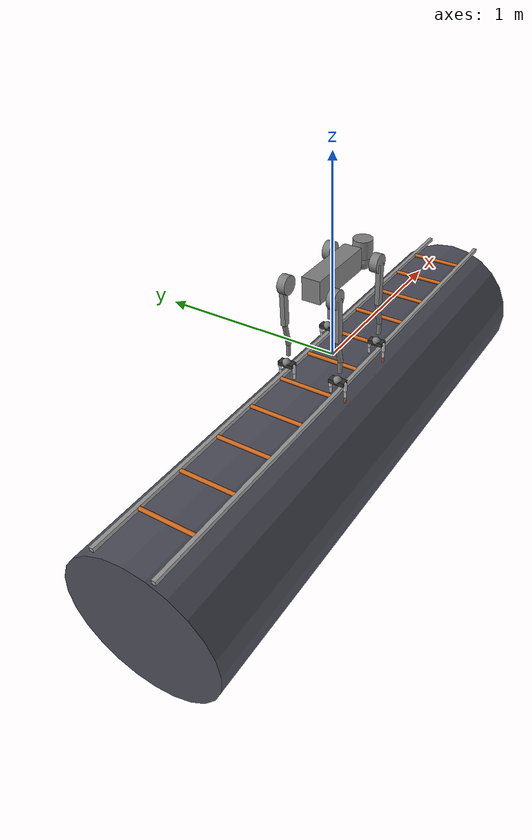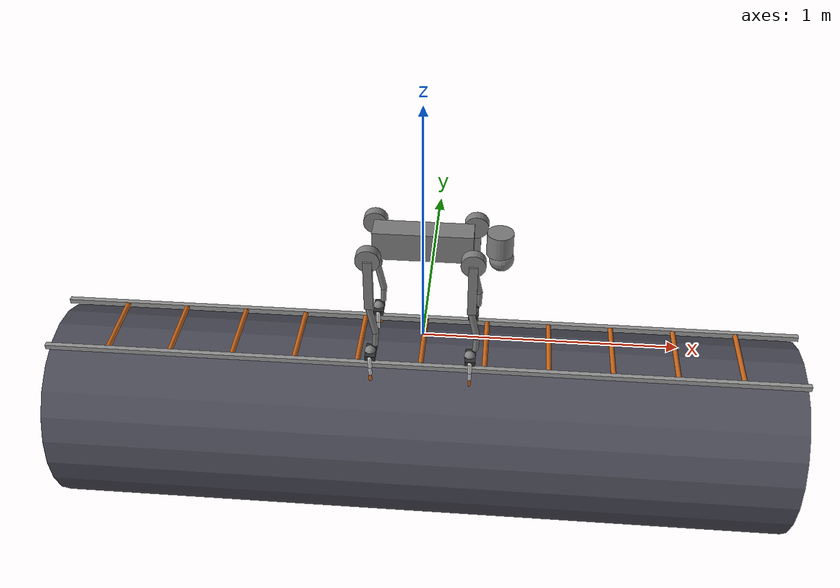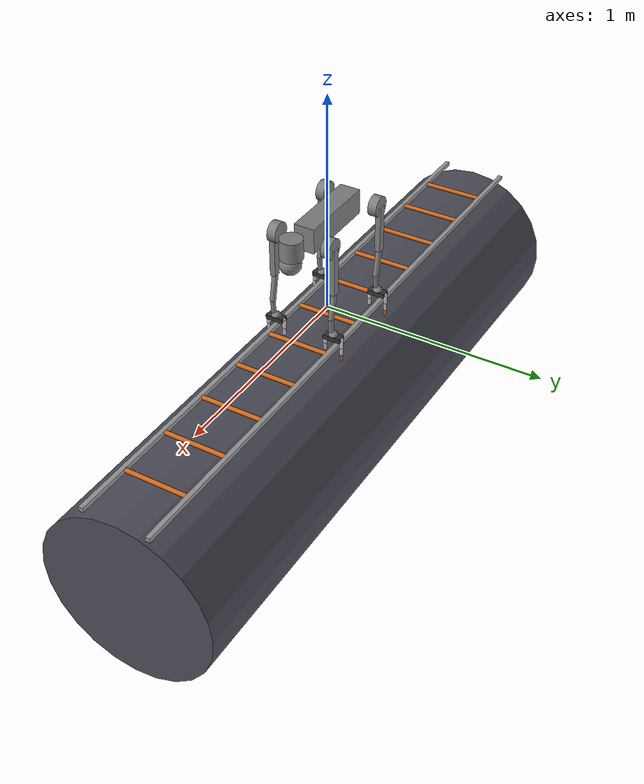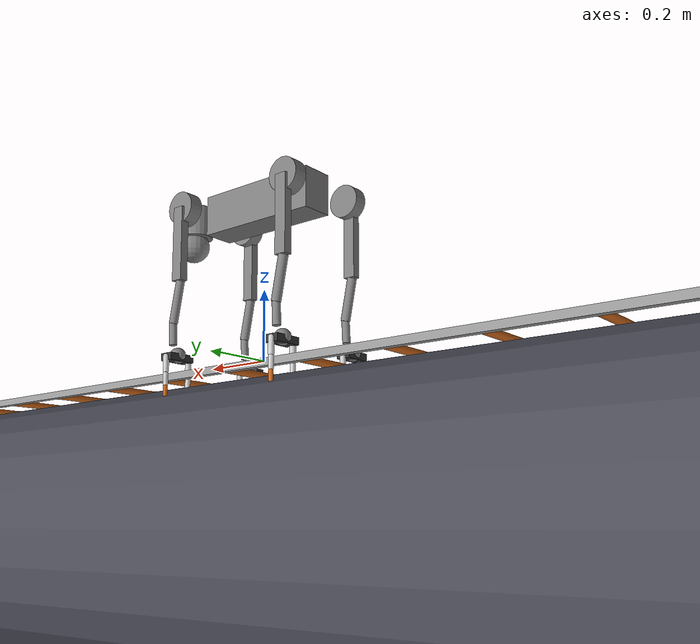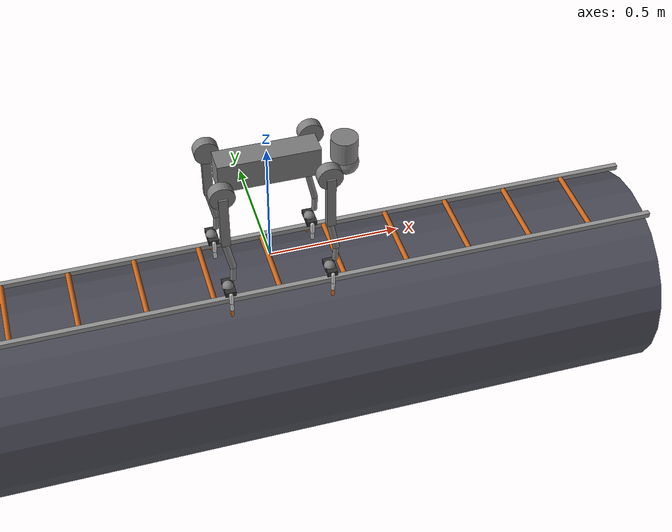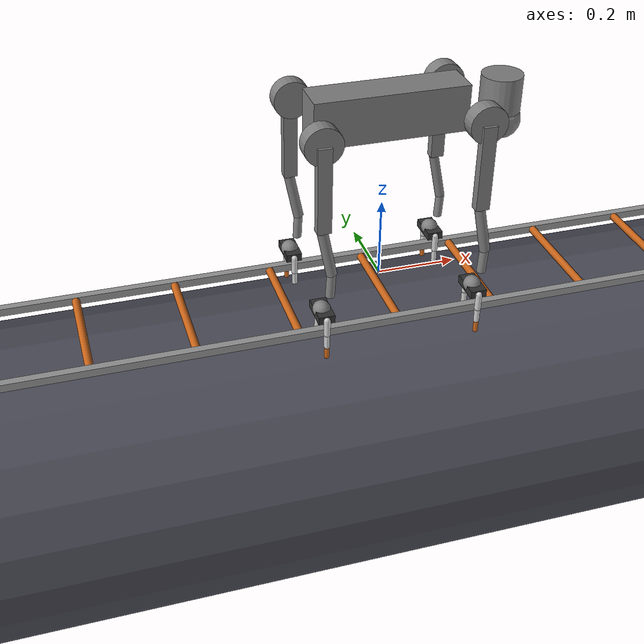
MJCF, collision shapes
<mujoco model="go2 scene">
  <include file="go2.xml"/>

  <statistic center="0 0 0.1" extent="0.8"/>

  <visual>
    <headlight diffuse="0.6 0.6 0.6" ambient="0.3 0.3 0.3" specular="0 0 0"/>
    <rgba haze="0.15 0.25 0.35 1"/>
    <global azimuth="-130" elevation="-20"/>
  </visual>

  <asset>
    <texture type="skybox" builtin="gradient" rgb1="0.3 0.5 0.7" rgb2="0 0 0" width="512" height="3072"/>
    <texture type="2d" name="groundplane" builtin="checker" mark="edge" rgb1="0.2 0.3 0.4" rgb2="0.1 0.2 0.3"
      markrgb="0.8 0.8 0.8" width="300" height="300"/>
    <material name="groundplane" texture="groundplane" texuniform="true" texrepeat="5 5" reflectance="0.2"/>
  </asset>

  <worldbody>
    <light pos="0 0 3" dir="0 0 -1" directional="true"/>

    <geom name="space_station_module" type="cylinder" size="0.4 1.5" pos="0 0 -0.45" zaxis="1 0 0" rgba="0.3 0.3 0.35 1"/>

    <body name="ladder_structure">
        <geom name="ladder_rail_front" type="box" size="1.5 0.01 0.01" pos="0  0.15 -0.04" rgba="0.6 0.6 0.6 1"/>
        <geom name="ladder_rail_back"  type="box" size="1.5 0.01 0.01" pos="0 -0.15 -0.04" rgba="0.6 0.6 0.6 1"/>

        <geom name="rung_1"  type="cylinder" size="0.01 0.15" pos="-1.25 0 -0.04" zaxis="0 1 0" rgba="0.8 0.4 0.1 1"/>
        <geom name="rung_2"  type="cylinder" size="0.01 0.15" pos="-1.0  0 -0.04" zaxis="0 1 0" rgba="0.8 0.4 0.1 1"/>
        <geom name="rung_3"  type="cylinder" size="0.01 0.15" pos="-0.75 0 -0.04" zaxis="0 1 0" rgba="0.8 0.4 0.1 1"/>
        <geom name="rung_4"  type="cylinder" size="0.01 0.15" pos="-0.5  0 -0.04" zaxis="0 1 0" rgba="0.8 0.4 0.1 1"/>
        <geom name="rung_5"  type="cylinder" size="0.01 0.15" pos="-0.25 0 -0.04" zaxis="0 1 0" rgba="0.8 0.4 0.1 1"/>
        <geom name="rung_6"  type="cylinder" size="0.01 0.15" pos=" 0.0  0 -0.04" zaxis="0 1 0" rgba="0.8 0.4 0.1 1"/>
        <geom name="rung_7"  type="cylinder" size="0.01 0.15" pos=" 0.25 0 -0.04" zaxis="0 1 0" rgba="0.8 0.4 0.1 1"/>
        <geom name="rung_8"  type="cylinder" size="0.01 0.15" pos=" 0.5  0 -0.04" zaxis="0 1 0" rgba="0.8 0.4 0.1 1"/>
        <geom name="rung_9"  type="cylinder" size="0.01 0.15" pos=" 0.75 0 -0.04" zaxis="0 1 0" rgba="0.8 0.4 0.1 1"/>
        <geom name="rung_10" type="cylinder" size="0.01 0.15" pos=" 1.0  0 -0.04" zaxis="0 1 0" rgba="0.8 0.4 0.1 1"/>
        <geom name="rung_11" type="cylinder" size="0.01 0.15" pos=" 1.25 0 -0.04" zaxis="0 1 0" rgba="0.8 0.4 0.1 1"/>
    </body>
  </worldbody>
</mujoco>

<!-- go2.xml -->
<mujoco model="go2">
  <compiler angle="radian" meshdir="assets" autolimits="true"/>

  <option cone="elliptic" impratio="100"/>

  <default>
    <default class="go2">
      <geom friction="0.6" margin="0.001" condim="1"/>
      <joint axis="0 1 0" damping="2" armature="0.01" frictionloss="0.2"/>
      <motor ctrlrange="-23.7 23.7"/>
      <default class="abduction">
        <joint axis="1 0 0" range="-1.0472 1.0472"/>
      </default>
      <default class="hip">
        <default class="front_hip">
          <joint range="-1.5708 3.4907"/>
        </default>
        <default class="back_hip">
          <joint range="-0.5236 4.5379"/>
        </default>
      </default>
      <default class="knee">
        <joint range="-2.7227 -0.83776"/>
        <motor ctrlrange="-45.43 45.43"/>
      </default>
      <default class="visual">
        <geom type="mesh" contype="0" conaffinity="0" group="2"/>
      </default>
      <default class="collision">
        <geom group="3"/>
        <default class="foot">
          <geom size="0.022" pos="-0.002 0 -0.213" priority="1" solimp="0.015 1 0.022" condim="6"
            friction="0.8 0.02 0.01"/>
        </default>
      </default>
    </default>
  </default>

  <asset>
    <material name="metal" rgba=".9 .95 .95 1"/>
    <material name="black" rgba="0 0 0 1"/>
    <material name="white" rgba="1 1 1 1"/>
    <material name="gray" rgba="0.671705 0.692426 0.774270 1"/>

    <mesh file="base_0.obj"/>
    <mesh file="base_1.obj"/>
    <mesh file="base_2.obj"/>
    <mesh file="base_3.obj"/>
    <mesh file="base_4.obj"/>
    <mesh file="hip_0.obj"/>
    <mesh file="hip_1.obj"/>
    <mesh file="thigh_0.obj"/>
    <mesh file="thigh_1.obj"/>
    <mesh file="thigh_mirror_0.obj"/>
    <mesh file="thigh_mirror_1.obj"/>
    <mesh file="calf_0.obj"/>
    <mesh file="calf_1.obj"/>
    <mesh file="calf_mirror_0.obj"/>
    <mesh file="calf_mirror_1.obj"/>
    <mesh file="foot.obj"/>
  </asset>

  <worldbody>
    <body name="base" pos="0 0 0.445" childclass="go2">
      <inertial pos="0.021112 0 -0.005366" quat="-0.000543471 0.713435 -0.00173769 0.700719" mass="6.921"
        diaginertia="0.107027 0.0980771 0.0244531"/>
      <freejoint/>
      <geom mesh="base_0" material="black" class="visual"/>
      <geom mesh="base_1" material="black" class="visual"/>
      <geom mesh="base_2" material="black" class="visual"/>
      <geom mesh="base_3" material="white" class="visual"/>
      <geom mesh="base_4" material="gray" class="visual"/>
      <geom size="0.1881 0.04675 0.057" type="box" class="collision"/>
      <geom size="0.05 0.045" pos="0.285 0 0.01" type="cylinder" class="collision"/>
      <geom size="0.047" pos="0.293 0 -0.06" class="collision"/>
      <site name="imu" pos="-0.02557 0 0.04232"/>
      <body name="FL_hip" pos="0.1934 0.0465 0">
        <inertial pos="-0.0054 0.00194 -0.000105" quat="0.497014 0.499245 0.505462 0.498237" mass="0.678"
          diaginertia="0.00088403 0.000596003 0.000479967"/>
        <joint name="FL_hip_joint" class="abduction"/>
        <geom mesh="hip_0" material="metal" class="visual"/>
        <geom mesh="hip_1" material="gray" class="visual"/>
        <geom size="0.046 0.02" pos="0 0.08 0" quat="1 1 0 0" type="cylinder" class="collision"/>
        <body name="FL_thigh" pos="0 0.0955 0">
          <inertial pos="-0.00374 -0.0223 -0.0327" quat="0.829533 0.0847635 -0.0200632 0.551623" mass="1.152"
            diaginertia="0.00594973 0.00584149 0.000878787"/>
          <joint name="FL_thigh_joint" class="front_hip"/>
          <geom mesh="thigh_0" material="metal" class="visual"/>
          <geom mesh="thigh_1" material="gray" class="visual"/>
          <geom size="0.1065 0.01225 0.017" pos="0 0 -0.1065" quat="0.707107 0 0.707107 0" type="box"
            class="collision"/>
          <body name="FL_calf" pos="0 0 -0.213">
            <inertial pos="0.00629595 -0.000622121 -0.141417" quat="0.710672 0.00154099 -0.00450087 0.703508"
              mass="0.241352" diaginertia="0.0014901 0.00146356 5.31397e-05"/>
            <joint name="FL_calf_joint" class="knee"/>
            <geom mesh="calf_0" material="gray" class="visual"/>
            <geom mesh="calf_1" material="black" class="visual"/>
            <geom size="0.012 0.06" pos="0.008 0 -0.06" quat="0.994493 0 -0.104807 0" type="cylinder"
              class="collision"/>
            <geom size="0.011 0.0325" pos="0.02 0 -0.148" quat="0.999688 0 0.0249974 0" type="cylinder"
              class="collision"/>
            <geom pos="0 0 -0.213" mesh="foot" class="visual" material="black"/>
            <geom name="FL" class="foot"/>

            <body name="FL_gripper_palm" pos="0 0 -0.22" quat="0.7071 0 0 0.7071">
              <geom name="fl_palm_v" type="box" size="0.04 0.02 0.01" rgba="0.2 0.2 0.2 1" class="visual"/>
              <body name="fl_finger_L1" pos="0.04 0 0">
                <joint name="fl_g_L1_j" type="hinge" axis="0 1 0" range="0 1.57" damping="0.1" frictionloss="0.01" armature="0.001"/>
                <geom type="capsule" size="0.008 0.02" pos="0 0 -0.02" quat="1 0 0 0" rgba="0.8 0.8 0.8 1"/>
                <body name="fl_finger_L2" pos="0 0 -0.04">
                  <joint name="fl_g_L2_j" type="hinge" axis="0 1 0" range="0 1.57" damping="0.1" frictionloss="0.01" armature="0.001"/>
                  <geom type="capsule" size="0.007 0.018" pos="0 0 -0.018" quat="1 0 0 0" rgba="0.8 0.8 0.8 1"/>
                  <body name="fl_finger_L3" pos="0 0 -0.036">
                    <joint name="fl_g_L3_j" type="hinge" axis="0 1 0" range="0 1.57" damping="0.1" frictionloss="0.01" armature="0.001"/>
                    <geom type="capsule" size="0.006 0.015" pos="0 0 -0.015" quat="1 0 0 0" rgba="0.8 0.4 0.1 1"/>
                  </body>
                </body>
              </body>
              <body name="fl_finger_R1" pos="-0.04 0 0">
                <joint name="fl_g_R1_j" type="hinge" axis="0 -1 0" range="0 1.57" damping="0.1" frictionloss="0.01" armature="0.001"/>
                <geom type="capsule" size="0.008 0.02" pos="0 0 -0.02" quat="1 0 0 0" rgba="0.8 0.8 0.8 1"/>
                <body name="fl_finger_R2" pos="0 0 -0.04">
                  <joint name="fl_g_R2_j" type="hinge" axis="0 -1 0" range="0 1.57" damping="0.1" frictionloss="0.01" armature="0.001"/>
                  <geom type="capsule" size="0.007 0.018" pos="0 0 -0.018" quat="1 0 0 0" rgba="0.8 0.8 0.8 1"/>
                  <body name="fl_finger_R3" pos="0 0 -0.036">
                    <joint name="fl_g_R3_j" type="hinge" axis="0 -1 0" range="0 1.57" damping="0.1" frictionloss="0.01" armature="0.001"/>
                    <geom type="capsule" size="0.006 0.015" pos="0 0 -0.015" quat="1 0 0 0" rgba="0.8 0.4 0.1 1"/>
                  </body>
                </body>
              </body>
            </body>

          </body>
        </body>
      </body>
      <body name="FR_hip" pos="0.1934 -0.0465 0">
        <inertial pos="-0.0054 -0.00194 -0.000105" quat="0.498237 0.505462 0.499245 0.497014" mass="0.678"
          diaginertia="0.00088403 0.000596003 0.000479967"/>
        <joint name="FR_hip_joint" class="abduction"/>
        <geom mesh="hip_0" material="metal" class="visual" quat="4.63268e-05 1 0 0"/>
        <geom mesh="hip_1" material="gray" class="visual" quat="4.63268e-05 1 0 0"/>
        <geom size="0.046 0.02" pos="0 -0.08 0" quat="0.707107 0.707107 0 0" type="cylinder" class="collision"/>
        <body name="FR_thigh" pos="0 -0.0955 0">
          <inertial pos="-0.00374 0.0223 -0.0327" quat="0.551623 -0.0200632 0.0847635 0.829533" mass="1.152"
            diaginertia="0.00594973 0.00584149 0.000878787"/>
          <joint name="FR_thigh_joint" class="front_hip"/>
          <geom mesh="thigh_mirror_0" material="metal" class="visual"/>
          <geom mesh="thigh_mirror_1" material="gray" class="visual"/>
          <geom size="0.1065 0.01225 0.017" pos="0 0 -0.1065" quat="0.707107 0 0.707107 0" type="box"
            class="collision"/>
          <body name="FR_calf" pos="0 0 -0.213">
            <inertial pos="0.00629595 0.000622121 -0.141417" quat="0.703508 -0.00450087 0.00154099 0.710672"
              mass="0.241352" diaginertia="0.0014901 0.00146356 5.31397e-05"/>
            <joint name="FR_calf_joint" class="knee"/>
            <geom mesh="calf_mirror_0" material="gray" class="visual"/>
            <geom mesh="calf_mirror_1" material="black" class="visual"/>
            <geom size="0.013 0.06" pos="0.01 0 -0.06" quat="0.995004 0 -0.0998334 0" type="cylinder"
              class="collision"/>
            <geom size="0.011 0.0325" pos="0.02 0 -0.148" quat="0.999688 0 0.0249974 0" type="cylinder"
              class="collision"/>
            <geom pos="0 0 -0.213" mesh="foot" class="visual" material="black"/>
            <geom name="FR" class="foot"/>

            <body name="FR_gripper_palm" pos="0 0 -0.22" quat="0.7071 0 0 0.7071">
              <geom name="fr_palm_v" type="box" size="0.04 0.02 0.01" rgba="0.2 0.2 0.2 1" class="visual"/>
              <body name="fr_finger_L1" pos="0.04 0 0">
                <joint name="fr_g_L1_j" type="hinge" axis="0 1 0" range="0 1.57" damping="0.1" frictionloss="0.01" armature="0.001"/>
                <geom type="capsule" size="0.008 0.02" pos="0 0 -0.02" quat="1 0 0 0" rgba="0.8 0.8 0.8 1"/>
                <body name="fr_finger_L2" pos="0 0 -0.04">
                  <joint name="fr_g_L2_j" type="hinge" axis="0 1 0" range="0 1.57" damping="0.1" frictionloss="0.01" armature="0.001"/>
                  <geom type="capsule" size="0.007 0.018" pos="0 0 -0.018" quat="1 0 0 0" rgba="0.8 0.8 0.8 1"/>
                  <body name="fr_finger_L3" pos="0 0 -0.036">
                    <joint name="fr_g_L3_j" type="hinge" axis="0 1 0" range="0 1.57" damping="0.1" frictionloss="0.01" armature="0.001"/>
                    <geom type="capsule" size="0.006 0.015" pos="0 0 -0.015" quat="1 0 0 0" rgba="0.8 0.4 0.1 1"/>
                  </body>
                </body>
              </body>
              <body name="fr_finger_R1" pos="-0.04 0 0">
                <joint name="fr_g_R1_j" type="hinge" axis="0 -1 0" range="0 1.57" damping="0.1" frictionloss="0.01" armature="0.001"/>
                <geom type="capsule" size="0.008 0.02" pos="0 0 -0.02" quat="1 0 0 0" rgba="0.8 0.8 0.8 1"/>
                <body name="fr_finger_R2" pos="0 0 -0.04">
                  <joint name="fr_g_R2_j" type="hinge" axis="0 -1 0" range="0 1.57" damping="0.1" frictionloss="0.01" armature="0.001"/>
                  <geom type="capsule" size="0.007 0.018" pos="0 0 -0.018" quat="1 0 0 0" rgba="0.8 0.8 0.8 1"/>
                  <body name="fr_finger_R3" pos="0 0 -0.036">
                    <joint name="fr_g_R3_j" type="hinge" axis="0 -1 0" range="0 1.57" damping="0.1" frictionloss="0.01" armature="0.001"/>
                    <geom type="capsule" size="0.006 0.015" pos="0 0 -0.015" quat="1 0 0 0" rgba="0.8 0.4 0.1 1"/>
                  </body>
                </body>
              </body>
            </body>

          </body>
        </body>
      </body>
      <body name="RL_hip" pos="-0.1934 0.0465 0">
        <inertial pos="0.0054 0.00194 -0.000105" quat="0.505462 0.498237 0.497014 0.499245" mass="0.678"
          diaginertia="0.00088403 0.000596003 0.000479967"/>
        <joint name="RL_hip_joint" class="abduction"/>
        <geom mesh="hip_0" material="metal" class="visual" quat="4.63268e-05 0 1 0"/>
        <geom mesh="hip_1" material="gray" class="visual" quat="4.63268e-05 0 1 0"/>
        <geom size="0.046 0.02" pos="0 0.08 0" quat="0.707107 0.707107 0 0" type="cylinder" class="collision"/>
        <body name="RL_thigh" pos="0 0.0955 0">
          <inertial pos="-0.00374 -0.0223 -0.0327" quat="0.829533 0.0847635 -0.0200632 0.551623" mass="1.152"
            diaginertia="0.00594973 0.00584149 0.000878787"/>
          <joint name="RL_thigh_joint" class="back_hip"/>
          <geom mesh="thigh_0" material="metal" class="visual"/>
          <geom mesh="thigh_1" material="gray" class="visual"/>
          <geom size="0.1065 0.01225 0.017" pos="0 0 -0.1065" quat="0.707107 0 0.707107 0" type="box"
            class="collision"/>
          <body name="RL_calf" pos="0 0 -0.213">
            <inertial pos="0.00629595 -0.000622121 -0.141417" quat="0.710672 0.00154099 -0.00450087 0.703508"
              mass="0.241352" diaginertia="0.0014901 0.00146356 5.31397e-05"/>
            <joint name="RL_calf_joint" class="knee"/>
            <geom mesh="calf_0" material="gray" class="visual"/>
            <geom mesh="calf_1" material="black" class="visual"/>
            <geom size="0.013 0.06" pos="0.01 0 -0.06" quat="0.995004 0 -0.0998334 0" type="cylinder"
              class="collision"/>
            <geom size="0.011 0.0325" pos="0.02 0 -0.148" quat="0.999688 0 0.0249974 0" type="cylinder"
              class="collision"/>
            <geom pos="0 0 -0.213" mesh="foot" class="visual" material="black"/>
            <geom name="RL" class="foot"/>

            <body name="RL_gripper_palm" pos="0 0 -0.22" quat="0.7071 0 0 0.7071">
              <geom name="rl_palm_v" type="box" size="0.04 0.02 0.01" rgba="0.2 0.2 0.2 1" class="visual"/>
              <body name="rl_finger_L1" pos="0.04 0 0">
                <joint name="rl_g_L1_j" type="hinge" axis="0 1 0" range="0 1.57" damping="0.1" frictionloss="0.01" armature="0.001"/>
                <geom type="capsule" size="0.008 0.02" pos="0 0 -0.02" quat="1 0 0 0" rgba="0.8 0.8 0.8 1"/>
                <body name="rl_finger_L2" pos="0 0 -0.04">
                  <joint name="rl_g_L2_j" type="hinge" axis="0 1 0" range="0 1.57" damping="0.1" frictionloss="0.01" armature="0.001"/>
                  <geom type="capsule" size="0.007 0.018" pos="0 0 -0.018" quat="1 0 0 0" rgba="0.8 0.8 0.8 1"/>
                  <body name="rl_finger_L3" pos="0 0 -0.036">
                    <joint name="rl_g_L3_j" type="hinge" axis="0 1 0" range="0 1.57" damping="0.1" frictionloss="0.01" armature="0.001"/>
                    <geom type="capsule" size="0.006 0.015" pos="0 0 -0.015" quat="1 0 0 0" rgba="0.8 0.4 0.1 1"/>
                  </body>
                </body>
              </body>
              <body name="rl_finger_R1" pos="-0.04 0 0">
                <joint name="rl_g_R1_j" type="hinge" axis="0 -1 0" range="0 1.57" damping="0.1" frictionloss="0.01" armature="0.001"/>
                <geom type="capsule" size="0.008 0.02" pos="0 0 -0.02" quat="1 0 0 0" rgba="0.8 0.8 0.8 1"/>
                <body name="rl_finger_R2" pos="0 0 -0.04">
                  <joint name="rl_g_R2_j" type="hinge" axis="0 -1 0" range="0 1.57" damping="0.1" frictionloss="0.01" armature="0.001"/>
                  <geom type="capsule" size="0.007 0.018" pos="0 0 -0.018" quat="1 0 0 0" rgba="0.8 0.8 0.8 1"/>
                  <body name="rl_finger_R3" pos="0 0 -0.036">
                    <joint name="rl_g_R3_j" type="hinge" axis="0 -1 0" range="0 1.57" damping="0.1" frictionloss="0.01" armature="0.001"/>
                    <geom type="capsule" size="0.006 0.015" pos="0 0 -0.015" quat="1 0 0 0" rgba="0.8 0.4 0.1 1"/>
                  </body>
                </body>
              </body>
            </body>

          </body>
        </body>
      </body>
      <body name="RR_hip" pos="-0.1934 -0.0465 0">
        <inertial pos="0.0054 -0.00194 -0.000105" quat="0.499245 0.497014 0.498237 0.505462" mass="0.678"
          diaginertia="0.00088403 0.000596003 0.000479967"/>
        <joint name="RR_hip_joint" class="abduction"/>
        <geom mesh="hip_0" material="metal" class="visual" quat="2.14617e-09 4.63268e-05 4.63268e-05 -1"/>
        <geom mesh="hip_1" material="gray" class="visual" quat="2.14617e-09 4.63268e-05 4.63268e-05 -1"/>
        <geom size="0.046 0.02" pos="0 -0.08 0" quat="0.707107 0.707107 0 0" type="cylinder" class="collision"/>
        <body name="RR_thigh" pos="0 -0.0955 0">
          <inertial pos="-0.00374 0.0223 -0.0327" quat="0.551623 -0.0200632 0.0847635 0.829533" mass="1.152"
            diaginertia="0.00594973 0.00584149 0.000878787"/>
          <joint name="RR_thigh_joint" class="back_hip"/>
          <geom mesh="thigh_mirror_0" material="metal" class="visual"/>
          <geom mesh="thigh_mirror_1" material="gray" class="visual"/>
          <geom size="0.1065 0.01225 0.017" pos="0 0 -0.1065" quat="0.707107 0 0.707107 0" type="box"
            class="collision"/>
          <body name="RR_calf" pos="0 0 -0.213">
            <inertial pos="0.00629595 0.000622121 -0.141417" quat="0.703508 -0.00450087 0.00154099 0.710672"
              mass="0.241352" diaginertia="0.0014901 0.00146356 5.31397e-05"/>
            <joint name="RR_calf_joint" class="knee"/>
            <geom mesh="calf_mirror_0" material="gray" class="visual"/>
            <geom mesh="calf_mirror_1" material="black" class="visual"/>
            <geom size="0.013 0.06" pos="0.01 0 -0.06" quat="0.995004 0 -0.0998334 0" type="cylinder"
              class="collision"/>
            <geom size="0.011 0.0325" pos="0.02 0 -0.148" quat="0.999688 0 0.0249974 0" type="cylinder"
              class="collision"/>
            <geom pos="0 0 -0.213" mesh="foot" class="visual" material="black"/>
            <geom name="RR" class="foot"/>

            <body name="RR_gripper_palm" pos="0 0 -0.22" quat="0.7071 0 0 0.7071">
              <geom name="rr_palm_v" type="box" size="0.04 0.02 0.01" rgba="0.2 0.2 0.2 1" class="visual"/>
              <body name="rr_finger_L1" pos="0.04 0 0">
                <joint name="rr_g_L1_j" type="hinge" axis="0 1 0" range="0 1.57" damping="0.1" frictionloss="0.01" armature="0.001"/>
                <geom type="capsule" size="0.008 0.02" pos="0 0 -0.02" quat="1 0 0 0" rgba="0.8 0.8 0.8 1"/>
                <body name="rr_finger_L2" pos="0 0 -0.04">
                  <joint name="rr_g_L2_j" type="hinge" axis="0 1 0" range="0 1.57" damping="0.1" frictionloss="0.01" armature="0.001"/>
                  <geom type="capsule" size="0.007 0.018" pos="0 0 -0.018" quat="1 0 0 0" rgba="0.8 0.8 0.8 1"/>
                  <body name="rr_finger_L3" pos="0 0 -0.036">
                    <joint name="rr_g_L3_j" type="hinge" axis="0 1 0" range="0 1.57" damping="0.1" frictionloss="0.01" armature="0.001"/>
                    <geom type="capsule" size="0.006 0.015" pos="0 0 -0.015" quat="1 0 0 0" rgba="0.8 0.4 0.1 1"/>
                  </body>
                </body>
              </body>
              <body name="rr_finger_R1" pos="-0.04 0 0">
                <joint name="rr_g_R1_j" type="hinge" axis="0 -1 0" range="0 1.57" damping="0.1" frictionloss="0.01" armature="0.001"/>
                <geom type="capsule" size="0.008 0.02" pos="0 0 -0.02" quat="1 0 0 0" rgba="0.8 0.8 0.8 1"/>
                <body name="rr_finger_R2" pos="0 0 -0.04">
                  <joint name="rr_g_R2_j" type="hinge" axis="0 -1 0" range="0 1.57" damping="0.1" frictionloss="0.01" armature="0.001"/>
                  <geom type="capsule" size="0.007 0.018" pos="0 0 -0.018" quat="1 0 0 0" rgba="0.8 0.8 0.8 1"/>
                  <body name="rr_finger_R3" pos="0 0 -0.036">
                    <joint name="rr_g_R3_j" type="hinge" axis="0 -1 0" range="0 1.57" damping="0.1" frictionloss="0.01" armature="0.001"/>
                    <geom type="capsule" size="0.006 0.015" pos="0 0 -0.015" quat="1 0 0 0" rgba="0.8 0.4 0.1 1"/>
                  </body>
                </body>
              </body>
            </body>

          </body>
        </body>
      </body>
    </body>
  </worldbody>

  <actuator>
    <motor class="abduction" name="FL_hip" joint="FL_hip_joint"/>
    <motor class="hip" name="FL_thigh" joint="FL_thigh_joint"/>
    <motor class="knee" name="FL_calf" joint="FL_calf_joint"/>
    <motor class="abduction" name="FR_hip" joint="FR_hip_joint"/>
    <motor class="hip" name="FR_thigh" joint="FR_thigh_joint"/>
    <motor class="knee" name="FR_calf" joint="FR_calf_joint"/>
    <motor class="abduction" name="RL_hip" joint="RL_hip_joint"/>
    <motor class="hip" name="RL_thigh" joint="RL_thigh_joint"/>
    <motor class="knee" name="RL_calf" joint="RL_calf_joint"/>
    <motor class="abduction" name="RR_hip" joint="RR_hip_joint"/>
    <motor class="hip" name="RR_thigh" joint="RR_thigh_joint"/>
    <motor class="knee" name="RR_calf" joint="RR_calf_joint"/>

    <motor name="fl_gripper_L1" joint="fl_g_L1_j" ctrlrange="-5 5"/>
    <motor name="fl_gripper_L2" joint="fl_g_L2_j" ctrlrange="-5 5"/>
    <motor name="fl_gripper_L3" joint="fl_g_L3_j" ctrlrange="-5 5"/>
    <motor name="fl_gripper_R1" joint="fl_g_R1_j" ctrlrange="-5 5"/>
    <motor name="fl_gripper_R2" joint="fl_g_R2_j" ctrlrange="-5 5"/>
    <motor name="fl_gripper_R3" joint="fl_g_R3_j" ctrlrange="-5 5"/>

    <motor name="fr_gripper_L1" joint="fr_g_L1_j" ctrlrange="-5 5"/>
    <motor name="fr_gripper_L2" joint="fr_g_L2_j" ctrlrange="-5 5"/>
    <motor name="fr_gripper_L3" joint="fr_g_L3_j" ctrlrange="-5 5"/>
    <motor name="fr_gripper_R1" joint="fr_g_R1_j" ctrlrange="-5 5"/>
    <motor name="fr_gripper_R2" joint="fr_g_R2_j" ctrlrange="-5 5"/>
    <motor name="fr_gripper_R3" joint="fr_g_R3_j" ctrlrange="-5 5"/>

    <motor name="rl_gripper_L1" joint="rl_g_L1_j" ctrlrange="-5 5"/>
    <motor name="rl_gripper_L2" joint="rl_g_L2_j" ctrlrange="-5 5"/>
    <motor name="rl_gripper_L3" joint="rl_g_L3_j" ctrlrange="-5 5"/>
    <motor name="rl_gripper_R1" joint="rl_g_R1_j" ctrlrange="-5 5"/>
    <motor name="rl_gripper_R2" joint="rl_g_R2_j" ctrlrange="-5 5"/>
    <motor name="rl_gripper_R3" joint="rl_g_R3_j" ctrlrange="-5 5"/>

    <motor name="rr_gripper_L1" joint="rr_g_L1_j" ctrlrange="-5 5"/>
    <motor name="rr_gripper_L2" joint="rr_g_L2_j" ctrlrange="-5 5"/>
    <motor name="rr_gripper_L3" joint="rr_g_L3_j" ctrlrange="-5 5"/>
    <motor name="rr_gripper_R1" joint="rr_g_R1_j" ctrlrange="-5 5"/>
    <motor name="rr_gripper_R2" joint="rr_g_R2_j" ctrlrange="-5 5"/>
    <motor name="rr_gripper_R3" joint="rr_g_R3_j" ctrlrange="-5 5"/>
  </actuator>

  <keyframe>
    <key name="home" qpos="0 0 0.27 1 0 0 0 0 0.9 -1.8 0 0.9 -1.8 0 0.9 -1.8 0 0.9 -1.8"
      ctrl="0 0.9 -1.8 0 0.9 -1.8 0 0.9 -1.8 0 0.9 -1.8"/>
  </keyframe>
</mujoco>
